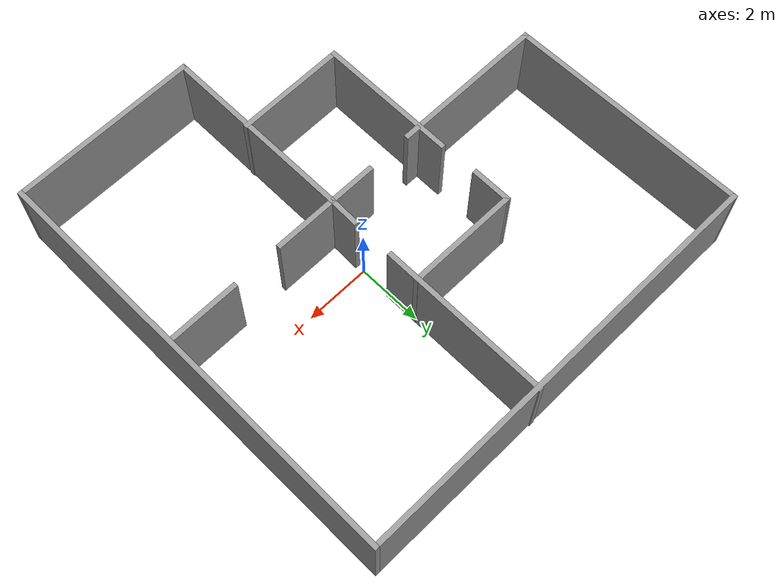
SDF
<?xml version='1.0'?>
<sdf version='1.7'>
  <model name='world_modified'>
    <pose>-0.967411 -0.438938 0 0 -0 0</pose>
    <link name='Wall_20'>
      <collision name='Wall_20_Collision'>
        <geometry>
          <box>
            <size>13.25 0.15 2.5</size>
          </box>
        </geometry>
        <pose>0 0 1.25 0 -0 0</pose>
      </collision>
      <visual name='Wall_20_Visual'>
        <pose>0 0 1.25 0 -0 0</pose>
        <geometry>
          <box>
            <size>13.25 0.15 2.5</size>
          </box>
        </geometry>
        <material>
          <script>
            <uri>file://media/materials/scripts/gazebo.material</uri>
            <name>Gazebo/Grey</name>
          </script>
          <ambient>1 1 1 1</ambient>
        </material>
        <meta>
          <layer>0</layer>
        </meta>
      </visual>
      <pose>0.000569 6.5347 0 0 -0 0</pose>
    </link>
    <link name='Wall_21'>
      <collision name='Wall_21_Collision'>
        <geometry>
          <box>
            <size>13.25 0.15 2.5</size>
          </box>
        </geometry>
        <pose>0 0 1.25 0 -0 0</pose>
      </collision>
      <visual name='Wall_21_Visual'>
        <pose>0 0 1.25 0 -0 0</pose>
        <geometry>
          <box>
            <size>13.25 0.15 2.5</size>
          </box>
        </geometry>
        <material>
          <script>
            <uri>file://media/materials/scripts/gazebo.material</uri>
            <name>Gazebo/Grey</name>
          </script>
          <ambient>1 1 1 1</ambient>
        </material>
        <meta>
          <layer>0</layer>
        </meta>
      </visual>
      <pose>6.55057 -0.015295 0 0 -0 -1.5708</pose>
    </link>
    <link name='Wall_22'>
      <collision name='Wall_22_Collision'>
        <geometry>
          <box>
            <size>5.75 0.15 2.5</size>
          </box>
        </geometry>
        <pose>0 0 1.25 0 -0 0</pose>
      </collision>
      <visual name='Wall_22_Visual'>
        <pose>0 0 1.25 0 -0 0</pose>
        <geometry>
          <box>
            <size>5.75 0.15 2.5</size>
          </box>
        </geometry>
        <material>
          <script>
            <uri>file://media/materials/scripts/gazebo.material</uri>
            <name>Gazebo/Grey</name>
          </script>
          <ambient>1 1 1 1</ambient>
        </material>
        <meta>
          <layer>0</layer>
        </meta>
      </visual>
      <pose>3.75057 -6.56529 0 0 -0 3.14159</pose>
    </link>
    <link name='Wall_23'>
      <collision name='Wall_23_Collision'>
        <geometry>
          <box>
            <size>6 0.15 2.5</size>
          </box>
        </geometry>
        <pose>0 0 1.25 0 -0 0</pose>
      </collision>
      <visual name='Wall_23_Visual'>
        <pose>0 0 1.25 0 -0 0</pose>
        <geometry>
          <box>
            <size>6 0.15 2.5</size>
          </box>
        </geometry>
        <material>
          <script>
            <uri>file://media/materials/scripts/gazebo.material</uri>
            <name>Gazebo/Grey</name>
          </script>
          <ambient>1 1 1 1</ambient>
        </material>
        <meta>
          <layer>0</layer>
        </meta>
      </visual>
      <pose>0.950569 -3.6403 0 0 -0 1.5708</pose>
    </link>
    <link name='Wall_24'>
      <collision name='Wall_24_Collision'>
        <geometry>
          <box>
            <size>1.5 0.15 2.5</size>
          </box>
        </geometry>
        <pose>0 0 1.25 0 -0 0</pose>
      </collision>
      <visual name='Wall_24_Visual'>
        <pose>0 0 1.25 0 -0 0</pose>
        <geometry>
          <box>
            <size>1.5 0.15 2.5</size>
          </box>
        </geometry>
        <material>
          <script>
            <uri>file://media/materials/scripts/gazebo.material</uri>
            <name>Gazebo/Grey</name>
          </script>
          <ambient>1 1 1 1</ambient>
        </material>
        <meta>
          <layer>0</layer>
        </meta>
      </visual>
      <pose>0.275569 -0.715295 0 0 -0 3.14159</pose>
    </link>
    <link name='Wall_28'>
      <collision name='Wall_28_Collision'>
        <geometry>
          <box>
            <size>4.75 0.15 2.5</size>
          </box>
        </geometry>
        <pose>0 0 1.25 0 -0 0</pose>
      </collision>
      <visual name='Wall_28_Visual'>
        <pose>0 0 1.25 0 -0 0</pose>
        <geometry>
          <box>
            <size>4.75 0.15 2.5</size>
          </box>
        </geometry>
        <material>
          <script>
            <uri>file://media/materials/scripts/gazebo.material</uri>
            <name>Gazebo/Grey</name>
          </script>
          <ambient>1 1 1 1</ambient>
        </material>
        <meta>
          <layer>0</layer>
        </meta>
      </visual>
      <pose>-4.13854 -0.715179 0 0 -0 3.14159</pose>
    </link>
    <link name='Wall_29'>
      <collision name='Wall_29_Collision'>
        <geometry>
          <box>
            <size>7.40073 0.15 2.5</size>
          </box>
        </geometry>
        <pose>0 0 1.25 0 -0 0</pose>
      </collision>
      <visual name='Wall_29_Visual'>
        <pose>0 0 1.25 0 -0 0</pose>
        <geometry>
          <box>
            <size>7.40073 0.15 2.5</size>
          </box>
        </geometry>
        <material>
          <script>
            <uri>file://media/materials/scripts/gazebo.material</uri>
            <name>Gazebo/Grey</name>
          </script>
          <ambient>1 1 1 1</ambient>
        </material>
        <meta>
          <layer>0</layer>
        </meta>
      </visual>
      <pose>-6.49398 2.90976 0 0 -0 1.58609</pose>
    </link>
    <link name='Wall_31'>
      <collision name='Wall_31_Collision'>
        <geometry>
          <box>
            <size>5.25 0.15 2.5</size>
          </box>
        </geometry>
        <pose>0 0 1.25 0 -0 0</pose>
      </collision>
      <visual name='Wall_31_Visual'>
        <pose>0 0 1.25 0 -0 0</pose>
        <geometry>
          <box>
            <size>5.25 0.15 2.5</size>
          </box>
        </geometry>
        <material>
          <script>
            <uri>file://media/materials/scripts/gazebo.material</uri>
            <name>Gazebo/Grey</name>
          </script>
          <ambient>1 1 1 1</ambient>
        </material>
        <meta>
          <layer>0</layer>
        </meta>
      </visual>
      <pose>0.975765 4.0153 0 0 -0 -1.5708</pose>
    </link>
    <link name='Wall_33'>
      <collision name='Wall_33_Collision'>
        <geometry>
          <box>
            <size>1.00701 0.15 2.5</size>
          </box>
        </geometry>
        <pose>0 0 1.25 0 -0 0</pose>
      </collision>
      <visual name='Wall_33_Visual'>
        <pose>0 0 1.25 0 -0 0</pose>
        <geometry>
          <box>
            <size>1.00701 0.15 2.5</size>
          </box>
        </geometry>
        <material>
          <script>
            <uri>file://media/materials/scripts/gazebo.material</uri>
            <name>Gazebo/Grey</name>
          </script>
          <ambient>1 1 1 1</ambient>
        </material>
        <meta>
          <layer>0</layer>
        </meta>
      </visual>
      <pose>0.963167 -0.286974 0 0 -0 -1.6002</pose>
    </link>
    <link name='Wall_36'>
      <collision name='Wall_36_Collision'>
        <geometry>
          <box>
            <size>4.25 0.15 2.5</size>
          </box>
        </geometry>
        <pose>0 0 1.25 0 -0 0</pose>
      </collision>
      <visual name='Wall_36_Visual'>
        <pose>0 0 1.25 0 -0 0</pose>
        <geometry>
          <box>
            <size>4.25 0.15 2.5</size>
          </box>
        </geometry>
        <material>
          <script>
            <uri>file://media/materials/scripts/gazebo.material</uri>
            <name>Gazebo/Grey</name>
          </script>
          <ambient>1 1 1 1</ambient>
        </material>
        <meta>
          <layer>0</layer>
        </meta>
      </visual>
      <pose>-2.2668 -1.93924 0 0 -0 -1.5708</pose>
    </link>
    <link name='Wall_38'>
      <collision name='Wall_38_Collision'>
        <geometry>
          <box>
            <size>3.39198 0.15 2.5</size>
          </box>
        </geometry>
        <pose>0 0 1.25 0 -0 0</pose>
      </collision>
      <visual name='Wall_38_Visual'>
        <pose>0 0 1.25 0 -0 0</pose>
        <geometry>
          <box>
            <size>3.39198 0.15 2.5</size>
          </box>
        </geometry>
        <material>
          <script>
            <uri>file://media/materials/scripts/gazebo.material</uri>
            <name>Gazebo/Grey</name>
          </script>
          <ambient>1 1 1 1</ambient>
        </material>
        <meta>
          <layer>0</layer>
        </meta>
      </visual>
      <pose>-0.645832 -3.98072 0 0 -0 -3.13633</pose>
    </link>
    <link name='Wall_40'>
      <collision name='Wall_40_Collision'>
        <geometry>
          <box>
            <size>1.25 0.15 2.5</size>
          </box>
        </geometry>
        <pose>0 0 1.25 0 -0 0</pose>
      </collision>
      <visual name='Wall_40_Visual'>
        <pose>0 0 1.25 0 -0 0</pose>
        <geometry>
          <box>
            <size>1.25 0.15 2.5</size>
          </box>
        </geometry>
        <material>
          <script>
            <uri>file://media/materials/scripts/gazebo.material</uri>
            <name>Gazebo/Grey</name>
          </script>
          <ambient>1 1 1 1</ambient>
        </material>
        <meta>
          <layer>0</layer>
        </meta>
      </visual>
      <pose>-2.31303 1.8791 0 0 -0 1.5708</pose>
    </link>
    <link name='Wall_41'>
      <collision name='Wall_41_Collision'>
        <geometry>
          <box>
            <size>3.44631 0.15 2.5</size>
          </box>
        </geometry>
        <pose>0 0 1.25 0 -0 0</pose>
      </collision>
      <visual name='Wall_41_Visual'>
        <pose>0 0 1.25 0 -0 0</pose>
        <geometry>
          <box>
            <size>3.44631 0.15 2.5</size>
          </box>
        </geometry>
        <material>
          <script>
            <uri>file://media/materials/scripts/gazebo.material</uri>
            <name>Gazebo/Grey</name>
          </script>
          <ambient>1 1 1 1</ambient>
        </material>
        <meta>
          <layer>0</layer>
        </meta>
      </visual>
      <pose>-0.664877 2.42705 0 0 -0 -0.001239</pose>
    </link>
    <link name='Wall_43'>
      <collision name='Wall_43_Collision'>
        <geometry>
          <box>
            <size>2.25 0.15 2.5</size>
          </box>
        </geometry>
        <pose>0 0 1.25 0 -0 0</pose>
      </collision>
      <visual name='Wall_43_Visual'>
        <pose>0 0 1.25 0 -0 0</pose>
        <geometry>
          <box>
            <size>2.25 0.15 2.5</size>
          </box>
        </geometry>
        <material>
          <script>
            <uri>file://media/materials/scripts/gazebo.material</uri>
            <name>Gazebo/Grey</name>
          </script>
          <ambient>1 1 1 1</ambient>
        </material>
        <meta>
          <layer>0</layer>
        </meta>
      </visual>
      <pose>5.45497 -0.701488 0 0 -0 3.14159</pose>
    </link>
    <link name='Wall_45'>
      <collision name='Wall_45_Collision'>
        <geometry>
          <box>
            <size>2 0.15 2.5</size>
          </box>
        </geometry>
        <pose>0 0 1.25 0 -0 0</pose>
      </collision>
      <visual name='Wall_45_Visual'>
        <pose>0 0 1.25 0 -0 0</pose>
        <geometry>
          <box>
            <size>2 0.15 2.5</size>
          </box>
        </geometry>
        <material>
          <script>
            <uri>file://media/materials/scripts/gazebo.material</uri>
            <name>Gazebo/Grey</name>
          </script>
          <ambient>1 1 1 1</ambient>
        </material>
        <meta>
          <layer>0</layer>
        </meta>
      </visual>
      <pose>1.87557 -0.715295 0 0 -0 0</pose>
    </link>
    <static>1</static>
  </model>
</sdf>
